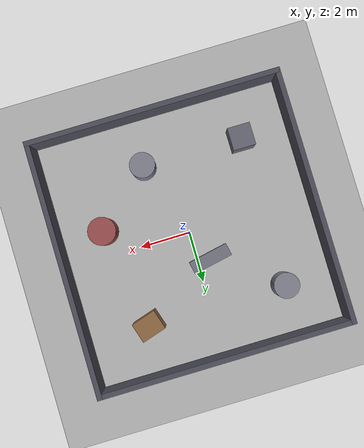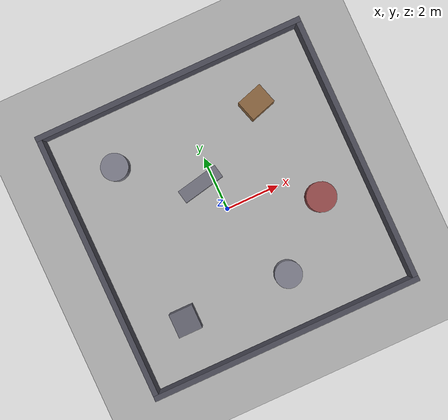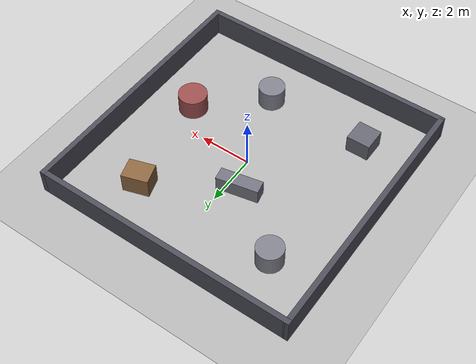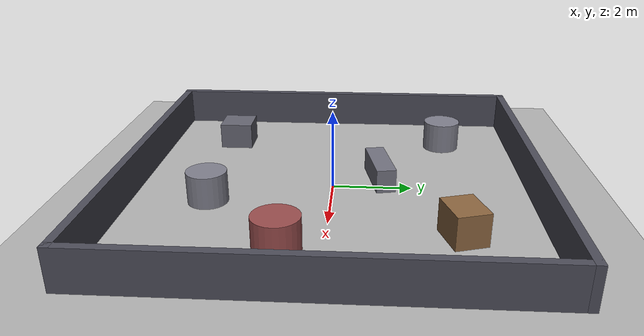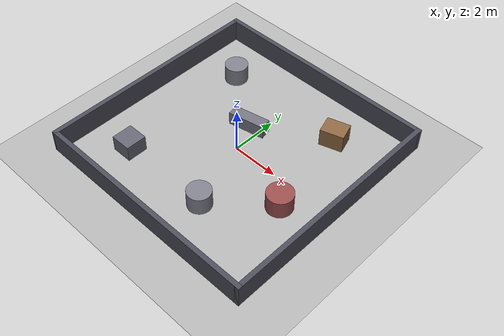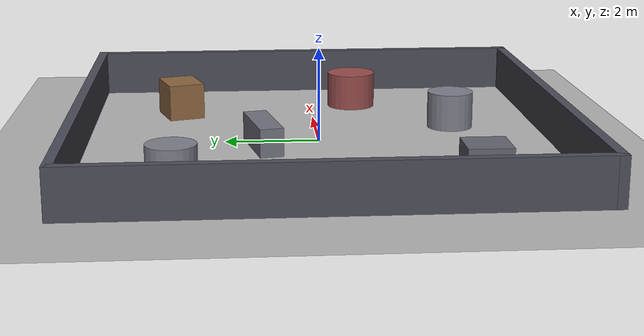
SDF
<?xml version='1.0' encoding='ASCII'?>
<sdf version='1.10'>
  <world name='arena'>
    <physics type="ode">
      <max_step_size>0.001</max_step_size>
      <real_time_factor>1.0</real_time_factor>
    </physics>

    <!-- Plugins updated for Gazebo Harmonic -->
    <plugin name='gz::sim::systems::Physics' filename='gz-sim-physics-system'/>
    <plugin name='gz::sim::systems::UserCommands' filename='gz-sim-user-commands-system'/>
    <plugin name='gz::sim::systems::SceneBroadcaster' filename='gz-sim-scene-broadcaster-system'/>
    <plugin name='gz::sim::systems::Contact' filename='gz-sim-contact-system'/>
    <plugin name='gz::sim::systems::Sensors' filename='gz-sim-sensors-system'>
      <render_engine>ogre2</render_engine>
    </plugin>

    <!-- Scene Lighting & Environment -->
    <scene>
      <ambient>0.8 0.8 0.8 1</ambient>
      <background>0.3 0.7 0.9 1</background>
      <shadows>0</shadows>
      <grid>false</grid>
    </scene>

    <!-- Global Light Source (Recommended for ogre2 so materials don't render black) -->
    <light type="directional" name="sun">
      <cast_shadows>true</cast_shadows>
      <pose>0 0 10 0 0 0</pose>
      <diffuse>0.8 0.8 0.8 1</diffuse>
      <specular>0.2 0.2 0.2 1</specular>
      <attenuation>
        <range>1000</range>
        <constant>0.9</constant>
        <linear>0.01</linear>
        <quadratic>0.001</quadratic>
      </attenuation>
      <direction>-0.5 0.1 -0.9</direction>
    </light>

    <!-- Ground Plane -->
    <model name='ground_plane'>
      <static>true</static>
      <link name='link'>
        <collision name='collision'>
          <geometry>
            <plane>
              <normal>0 0 1</normal>
              <size>20 20</size>
            </plane>
          </geometry>
        </collision>
        <visual name='visual'>
          <geometry>
            <plane>
              <normal>0 0 1</normal>
              <size>20 20</size>
            </plane>
          </geometry>
          <material>
            <ambient>0.6 0.6 0.6 1</ambient>
            <diffuse>0.7 0.7 0.7 1</diffuse>
          </material>
        </visual>
      </link>
      <pose>0 0 0 0 0 0</pose>
    </model>

    <!-- Boundary Walls (10m x 10m enclosure) -->
    <model name="wall_north">
      <static>true</static>
      <pose>0 5 0.5 0 0 0</pose>
      <link name="link">
        <collision name="collision"><geometry><box><size>10.2 0.2 1.0</size></box></geometry></collision>
        <visual name="visual"><geometry><box><size>10.2 0.2 1.0</size></box></geometry>
          <material><ambient>0.3 0.3 0.35 1</ambient><diffuse>0.3 0.3 0.35 1</diffuse></material>
        </visual>
      </link>
    </model>

    <model name="wall_south">
      <static>true</static>
      <pose>0 -5 0.5 0 0 0</pose>
      <link name="link">
        <collision name="collision"><geometry><box><size>10.2 0.2 1.0</size></box></geometry></collision>
        <visual name="visual"><geometry><box><size>10.2 0.2 1.0</size></box></geometry>
          <material><ambient>0.3 0.3 0.35 1</ambient><diffuse>0.3 0.3 0.35 1</diffuse></material>
        </visual>
      </link>
    </model>

    <model name="wall_east">
      <static>true</static>
      <pose>5 0 0.5 0 0 1.5708</pose>
      <link name="link">
        <collision name="collision"><geometry><box><size>10.2 0.2 1.0</size></box></geometry></collision>
        <visual name="visual"><geometry><box><size>10.2 0.2 1.0</size></box></geometry>
          <material><ambient>0.3 0.3 0.35 1</ambient><diffuse>0.3 0.3 0.35 1</diffuse></material>
        </visual>
      </link>
    </model>

    <model name="wall_west">
      <static>true</static>
      <pose>-5 0 0.5 0 0 1.5708</pose>
      <link name="link">
        <collision name="collision"><geometry><box><size>10.2 0.2 1.0</size></box></geometry></collision>
        <visual name="visual"><geometry><box><size>10.2 0.2 1.0</size></box></geometry>
          <material><ambient>0.3 0.3 0.35 1</ambient><diffuse>0.3 0.3 0.35 1</diffuse></material>
        </visual>
      </link>
    </model>

    <!-- Static Obstacles -->
    <model name="obstacle_O1_cylinder">
      <static>true</static>
      <pose>-3 3 0.4 0 0 0</pose>
      <link name="link">
        <collision name="collision"><geometry><cylinder><radius>0.5</radius><length>0.8</length></cylinder></geometry></collision>
        <visual name="visual"><geometry><cylinder><radius>0.5</radius><length>0.8</length></cylinder></geometry>
          <material><ambient>0.5 0.5 0.55 1</ambient><diffuse>0.5 0.5 0.55 1</diffuse></material>
        </visual>
      </link>
    </model>

    <model name="obstacle_O2_box">
      <static>true</static>
      <pose>2.5 3 0.4 0 0 0.3</pose>
      <link name="link">
        <collision name="collision"><geometry><box><size>1.0 0.8 0.8</size></box></geometry></collision>
        <visual name="visual"><geometry><box><size>1.0 0.8 0.8</size></box></geometry>
          <material><ambient>0.55 0.4 0.25 1</ambient><diffuse>0.55 0.4 0.25 1</diffuse></material>
        </visual>
      </link>
    </model>

    <model name="obstacle_O3_box">
      <static>true</static>
      <pose>-0.5 1.2 0.3 0 0 0.2</pose>
      <link name="link">
        <collision name="collision"><geometry><box><size>1.6 0.5 0.6</size></box></geometry></collision>
        <visual name="visual"><geometry><box><size>1.6 0.5 0.6</size></box></geometry>
          <material><ambient>0.45 0.45 0.5 1</ambient><diffuse>0.45 0.45 0.5 1</diffuse></material>
        </visual>
      </link>
    </model>

    <model name="obstacle_O4_box">
      <static>true</static>
      <pose>-3 -3 0.35 0 0 0</pose>
      <link name="link">
        <collision name="collision"><geometry><box><size>0.9 0.9 0.7</size></box></geometry></collision>
        <visual name="visual"><geometry><box><size>0.9 0.9 0.7</size></box></geometry>
          <material><ambient>0.4 0.4 0.45 1</ambient><diffuse>0.4 0.4 0.45 1</diffuse></material>
        </visual>
      </link>
    </model>

    <model name="obstacle_O5_cylinder">
      <static>true</static>
      <pose>1 -3 0.4 0 0 0</pose>
      <link name="link">
        <collision name="collision"><geometry><cylinder><radius>0.5</radius><length>0.8</length></cylinder></geometry></collision>
        <visual name="visual"><geometry><cylinder><radius>0.5</radius><length>0.8</length></cylinder></geometry>
          <material><ambient>0.5 0.5 0.55 1</ambient><diffuse>0.5 0.5 0.55 1</diffuse></material>
        </visual>
      </link>
    </model>

    <!-- O6 Polygon replacement (primitive cylinder to ensure stability) -->
    <model name="obstacle_O6_cylinder">
      <static>true</static>
      <pose>3.2 -1 0.4 0 0 0</pose>
      <link name="link">
        <collision name="collision"><geometry><cylinder><radius>0.55</radius><length>0.8</length></cylinder></geometry></collision>
        <visual name="visual"><geometry><cylinder><radius>0.55</radius><length>0.8</length></cylinder></geometry>
          <material><ambient>0.6 0.3 0.3 1</ambient><diffuse>0.6 0.3 0.3 1</diffuse></material>
        </visual>
      </link>
    </model>
  </world>
</sdf>
